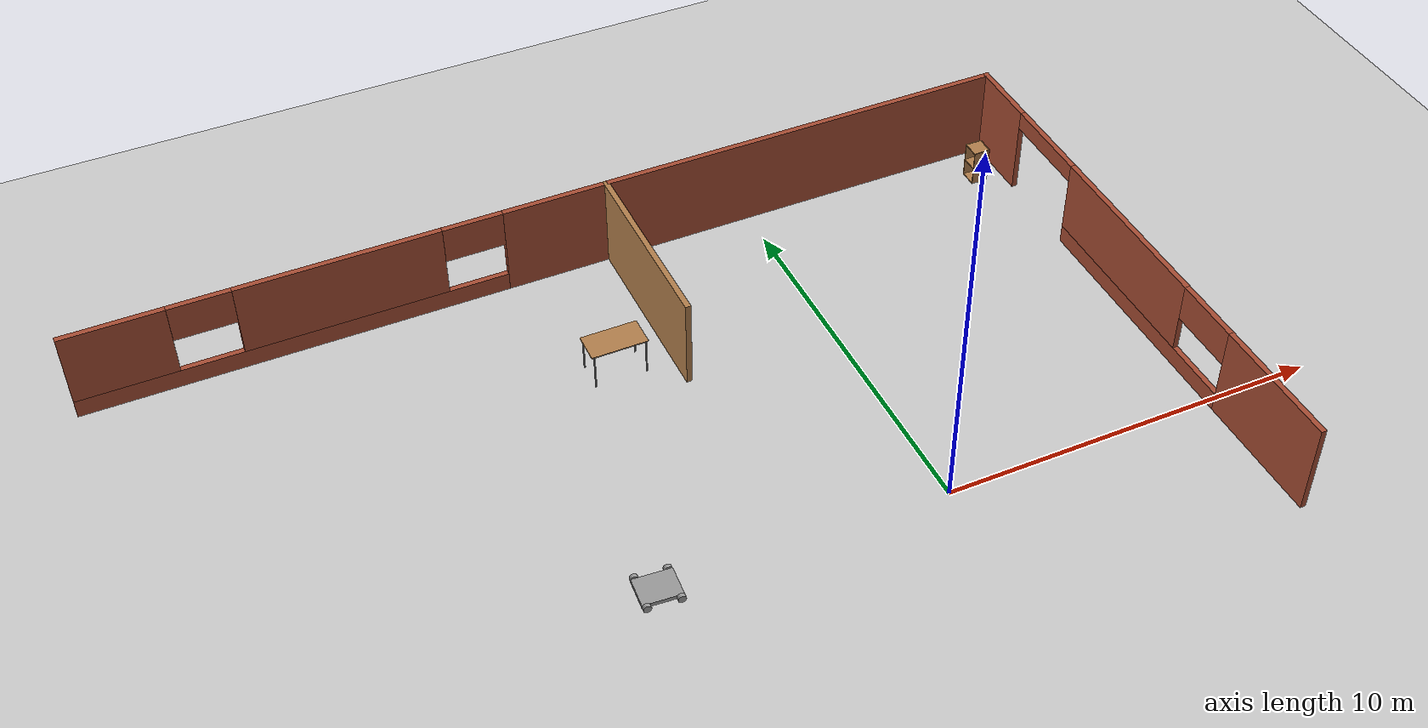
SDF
<sdf version="1.6">
 <world name="default">
  <model name="ground_plane">
   <static>1</static>
   <link name="link">
    <collision name="collision">
     <geometry><plane><normal>0 0 1</normal><size>100 100</size></plane></geometry>
     <surface><friction><ode><mu>100</mu><mu2>50</mu2></ode></friction></surface>
    </collision>
    <visual name="visual">
     <cast_shadows>0</cast_shadows>
     <geometry><plane><normal>0 0 1</normal><size>100 100</size></plane></geometry>
     <material>
      <script><uri>file://media/materials/scripts/gazebo.material</uri><name>Gazebo/Grey</name></script>
     </material>
    </visual>
   </link>
  </model>
  <model name="robotsmall4wheels">
   <link name="link_0">
    <pose>0.008 0 0 0 -0 0</pose>
    <inertial>
     <mass>1</mass>
     <inertia>
      <ixx>0.166667</ixx>
      <ixy>0</ixy>
      <ixz>0</ixz>
      <iyy>0.166667</iyy>
      <iyz>0</iyz>
      <izz>0.166667</izz>
     </inertia>
    </inertial>
    <visual name="visual">
     <geometry><box><size>1 0.8 0.1</size></box></geometry>
     <material>
      <lighting>1</lighting>
      <script><uri>file://media/materials/scripts/gazebo.material</uri><name>Gazebo/Grey</name></script>
      <shader type="pixel"><normal_map>__default__</normal_map></shader>
      <ambient>0.3 0.3 0.3 1</ambient>
      <diffuse>0.7 0.7 0.7 1</diffuse>
      <specular>0.01 0.01 0.01 1</specular>
      <emissive>0 0 0 1</emissive>
     </material>
    </visual>
    <collision name="collision">
     <geometry><box><size>1 0.8 0.1</size></box></geometry>
     <surface>
      <friction>
       <ode><mu>1</mu><mu2>1</mu2><fdir1>0 0 0</fdir1><slip1>0</slip1><slip2>0</slip2></ode>
       <torsional>
        <coefficient>1</coefficient>
        <patch_radius>0</patch_radius>
        <surface_radius>0</surface_radius>
        <use_patch_radius>1</use_patch_radius>
        <ode><slip>0</slip></ode>
       </torsional>
      </friction>
      <bounce><restitution_coefficient>0</restitution_coefficient><threshold>1e+06</threshold></bounce>
      <contact>
       <collide_without_contact>0</collide_without_contact>
       <collide_without_contact_bitmask>1</collide_without_contact_bitmask>
       <collide_bitmask>1</collide_bitmask>
       <ode>
        <soft_cfm>0</soft_cfm>
        <soft_erp>0.2</soft_erp>
        <kp>1e+13</kp>
        <kd>1</kd>
        <max_vel>0.01</max_vel>
        <min_depth>0</min_depth>
       </ode>
       <bullet>
        <split_impulse>1</split_impulse>
        <split_impulse_penetration_threshold>-0.01</split_impulse_penetration_threshold>
        <soft_cfm>0</soft_cfm>
        <soft_erp>0.2</soft_erp>
        <kp>1e+13</kp>
        <kd>1</kd>
       </bullet>
      </contact>
     </surface>
    </collision>
   </link>
   <link name="link_1">
    <pose>0.418031 -0.452375 0 1.5708 -0 0</pose>
    <inertial>
     <mass>1</mass>
     <inertia><ixx>0.145833</ixx><ixy>0</ixy><ixz>0</ixz><iyy>0.145833</iyy><iyz>0</iyz><izz>0.125</izz></inertia>
    </inertial>
    <visual name="visual">
     <geometry><cylinder><radius>0.1</radius><length>0.1</length></cylinder></geometry>
     <material>
      <lighting>1</lighting>
      <script><uri>file://media/materials/scripts/gazebo.material</uri><name>Gazebo/Grey</name></script>
      <shader type="pixel"><normal_map>__default__</normal_map></shader>
      <ambient>0.3 0.3 0.3 1</ambient>
      <diffuse>0.7 0.7 0.7 1</diffuse>
      <specular>0.01 0.01 0.01 1</specular>
      <emissive>0 0 0 1</emissive>
     </material>
    </visual>
    <collision name="collision">
     <geometry><cylinder><radius>0.1</radius><length>0.1</length></cylinder></geometry>
     <surface>
      <friction>
       <ode><mu>1</mu><mu2>1</mu2><fdir1>0 0 0</fdir1><slip1>0</slip1><slip2>0</slip2></ode>
       <torsional>
        <coefficient>1</coefficient>
        <patch_radius>0</patch_radius>
        <surface_radius>0</surface_radius>
        <use_patch_radius>1</use_patch_radius>
        <ode><slip>0</slip></ode>
       </torsional>
      </friction>
      <bounce><restitution_coefficient>0</restitution_coefficient><threshold>1e+06</threshold></bounce>
      <contact>
       <collide_without_contact>0</collide_without_contact>
       <collide_without_contact_bitmask>1</collide_without_contact_bitmask>
       <collide_bitmask>1</collide_bitmask>
       <ode>
        <soft_cfm>0</soft_cfm>
        <soft_erp>0.2</soft_erp>
        <kp>1e+13</kp>
        <kd>1</kd>
        <max_vel>0.01</max_vel>
        <min_depth>0</min_depth>
       </ode>
       <bullet>
        <split_impulse>1</split_impulse>
        <split_impulse_penetration_threshold>-0.01</split_impulse_penetration_threshold>
        <soft_cfm>0</soft_cfm>
        <soft_erp>0.2</soft_erp>
        <kp>1e+13</kp>
        <kd>1</kd>
       </bullet>
      </contact>
     </surface>
    </collision>
   </link>
   <link name="link_1_clone">
    <pose>-0.392 -0.45 -0 1.5708 -0 0</pose>
    <inertial>
     <mass>1</mass>
     <inertia><ixx>0.145833</ixx><ixy>0</ixy><ixz>0</ixz><iyy>0.145833</iyy><iyz>0</iyz><izz>0.125</izz></inertia>
    </inertial>
    <visual name="visual">
     <geometry><cylinder><radius>0.1</radius><length>0.1</length></cylinder></geometry>
     <material>
      <lighting>1</lighting>
      <script><uri>file://media/materials/scripts/gazebo.material</uri><name>Gazebo/Grey</name></script>
      <shader type="pixel"><normal_map>__default__</normal_map></shader>
      <ambient>0.3 0.3 0.3 1</ambient>
      <diffuse>0.7 0.7 0.7 1</diffuse>
      <specular>0.01 0.01 0.01 1</specular>
      <emissive>0 0 0 1</emissive>
     </material>
    </visual>
    <collision name="collision">
     <geometry><cylinder><radius>0.1</radius><length>0.1</length></cylinder></geometry>
     <surface>
      <friction>
       <ode><mu>1</mu><mu2>1</mu2><fdir1>0 0 0</fdir1><slip1>0</slip1><slip2>0</slip2></ode>
       <torsional>
        <coefficient>1</coefficient>
        <patch_radius>0</patch_radius>
        <surface_radius>0</surface_radius>
        <use_patch_radius>1</use_patch_radius>
        <ode><slip>0</slip></ode>
       </torsional>
      </friction>
      <bounce><restitution_coefficient>0</restitution_coefficient><threshold>1e+06</threshold></bounce>
      <contact>
       <collide_without_contact>0</collide_without_contact>
       <collide_without_contact_bitmask>1</collide_without_contact_bitmask>
       <collide_bitmask>1</collide_bitmask>
       <ode>
        <soft_cfm>0</soft_cfm>
        <soft_erp>0.2</soft_erp>
        <kp>1e+13</kp>
        <kd>1</kd>
        <max_vel>0.01</max_vel>
        <min_depth>0</min_depth>
       </ode>
       <bullet>
        <split_impulse>1</split_impulse>
        <split_impulse_penetration_threshold>-0.01</split_impulse_penetration_threshold>
        <soft_cfm>0</soft_cfm>
        <soft_erp>0.2</soft_erp>
        <kp>1e+13</kp>
        <kd>1</kd>
       </bullet>
      </contact>
     </surface>
    </collision>
   </link>
   <link name="link_1_clone_0">
    <pose>-0.392 0.45 -0 1.5708 -0 0</pose>
    <inertial>
     <mass>1</mass>
     <inertia><ixx>0.145833</ixx><ixy>0</ixy><ixz>0</ixz><iyy>0.145833</iyy><iyz>0</iyz><izz>0.125</izz></inertia>
    </inertial>
    <visual name="visual">
     <geometry><cylinder><radius>0.1</radius><length>0.1</length></cylinder></geometry>
     <material>
      <lighting>1</lighting>
      <script><uri>file://media/materials/scripts/gazebo.material</uri><name>Gazebo/Grey</name></script>
      <shader type="pixel"><normal_map>__default__</normal_map></shader>
      <ambient>0.3 0.3 0.3 1</ambient>
      <diffuse>0.7 0.7 0.7 1</diffuse>
      <specular>0.01 0.01 0.01 1</specular>
      <emissive>0 0 0 1</emissive>
     </material>
    </visual>
    <collision name="collision">
     <geometry><cylinder><radius>0.1</radius><length>0.1</length></cylinder></geometry>
     <surface>
      <friction>
       <ode><mu>1</mu><mu2>1</mu2><fdir1>0 0 0</fdir1><slip1>0</slip1><slip2>0</slip2></ode>
       <torsional>
        <coefficient>1</coefficient>
        <patch_radius>0</patch_radius>
        <surface_radius>0</surface_radius>
        <use_patch_radius>1</use_patch_radius>
        <ode><slip>0</slip></ode>
       </torsional>
      </friction>
      <bounce><restitution_coefficient>0</restitution_coefficient><threshold>1e+06</threshold></bounce>
      <contact>
       <collide_without_contact>0</collide_without_contact>
       <collide_without_contact_bitmask>1</collide_without_contact_bitmask>
       <collide_bitmask>1</collide_bitmask>
       <ode>
        <soft_cfm>0</soft_cfm>
        <soft_erp>0.2</soft_erp>
        <kp>1e+13</kp>
        <kd>1</kd>
        <max_vel>0.01</max_vel>
        <min_depth>0</min_depth>
       </ode>
       <bullet>
        <split_impulse>1</split_impulse>
        <split_impulse_penetration_threshold>-0.01</split_impulse_penetration_threshold>
        <soft_cfm>0</soft_cfm>
        <soft_erp>0.2</soft_erp>
        <kp>1e+13</kp>
        <kd>1</kd>
       </bullet>
      </contact>
     </surface>
    </collision>
   </link>
   <link name="link_1_clone_1">
    <pose>0.408 0.45 -0 1.5708 -0 0</pose>
    <inertial>
     <mass>1</mass>
     <inertia><ixx>0.145833</ixx><ixy>0</ixy><ixz>0</ixz><iyy>0.145833</iyy><iyz>0</iyz><izz>0.125</izz></inertia>
    </inertial>
    <visual name="visual">
     <geometry><cylinder><radius>0.1</radius><length>0.1</length></cylinder></geometry>
     <material>
      <lighting>1</lighting>
      <script><uri>file://media/materials/scripts/gazebo.material</uri><name>Gazebo/Grey</name></script>
      <shader type="pixel"><normal_map>__default__</normal_map></shader>
      <ambient>0.3 0.3 0.3 1</ambient>
      <diffuse>0.7 0.7 0.7 1</diffuse>
      <specular>0.01 0.01 0.01 1</specular>
      <emissive>0 0 0 1</emissive>
     </material>
    </visual>
    <collision name="collision">
     <geometry><cylinder><radius>0.1</radius><length>0.1</length></cylinder></geometry>
     <surface>
      <friction>
       <ode><mu>1</mu><mu2>1</mu2><fdir1>0 0 0</fdir1><slip1>0</slip1><slip2>0</slip2></ode>
       <torsional>
        <coefficient>1</coefficient>
        <patch_radius>0</patch_radius>
        <surface_radius>0</surface_radius>
        <use_patch_radius>1</use_patch_radius>
        <ode><slip>0</slip></ode>
       </torsional>
      </friction>
      <bounce><restitution_coefficient>0</restitution_coefficient><threshold>1e+06</threshold></bounce>
      <contact>
       <collide_without_contact>0</collide_without_contact>
       <collide_without_contact_bitmask>1</collide_without_contact_bitmask>
       <collide_bitmask>1</collide_bitmask>
       <ode>
        <soft_cfm>0</soft_cfm>
        <soft_erp>0.2</soft_erp>
        <kp>1e+13</kp>
        <kd>1</kd>
        <max_vel>0.01</max_vel>
        <min_depth>0</min_depth>
       </ode>
       <bullet>
        <split_impulse>1</split_impulse>
        <split_impulse_penetration_threshold>-0.01</split_impulse_penetration_threshold>
        <soft_cfm>0</soft_cfm>
        <soft_erp>0.2</soft_erp>
        <kp>1e+13</kp>
        <kd>1</kd>
       </bullet>
      </contact>
     </surface>
    </collision>
   </link>
   <joint name="link_0_JOINT_0" type="revolute">
    <parent>link_0</parent>
    <child>link_1</child>
    <axis>
     <xyz>0 0 1</xyz>
     <use_parent_model_frame>0</use_parent_model_frame>
     <limit>
      <lower>-1.79769e+308</lower>
      <upper>1.79769e+308</upper>
      <effort>-1</effort>
      <velocity>-1</velocity>
     </limit>
     <dynamics>
      <spring_reference>0</spring_reference>
      <spring_stiffness>0</spring_stiffness>
      <damping>0</damping>
     </dynamics>
    </axis>
    <physics>
     <ode><limit><cfm>0</cfm><erp>0.2</erp></limit><suspension><cfm>0</cfm><erp>0.2</erp></suspension></ode>
    </physics>
   </joint>
   <joint name="link_0_JOINT_3" type="revolute">
    <parent>link_0</parent>
    <child>link_1_clone</child>
    <axis>
     <xyz>0 0 1</xyz>
     <use_parent_model_frame>0</use_parent_model_frame>
     <limit>
      <lower>-1.79769e+308</lower>
      <upper>1.79769e+308</upper>
      <effort>-1</effort>
      <velocity>-1</velocity>
     </limit>
     <dynamics>
      <spring_reference>0</spring_reference>
      <spring_stiffness>0</spring_stiffness>
      <damping>0</damping>
      <friction>0</friction>
     </dynamics>
    </axis>
    <physics>
     <ode><limit><cfm>0</cfm><erp>0.2</erp></limit><suspension><cfm>0</cfm><erp>0.2</erp></suspension></ode>
    </physics>
   </joint>
   <joint name="link_0_JOINT_5" type="revolute">
    <parent>link_0</parent>
    <child>link_1_clone_0</child>
    <axis>
     <xyz>0 0 1</xyz>
     <use_parent_model_frame>0</use_parent_model_frame>
     <limit>
      <lower>-1.79769e+308</lower>
      <upper>1.79769e+308</upper>
      <effort>-1</effort>
      <velocity>-1</velocity>
     </limit>
     <dynamics>
      <spring_reference>0</spring_reference>
      <spring_stiffness>0</spring_stiffness>
      <damping>0</damping>
      <friction>0</friction>
     </dynamics>
    </axis>
    <physics>
     <ode><limit><cfm>0</cfm><erp>0.2</erp></limit><suspension><cfm>0</cfm><erp>0.2</erp></suspension></ode>
    </physics>
   </joint>
   <joint name="link_0_JOINT_6" type="revolute">
    <parent>link_0</parent>
    <child>link_1_clone_1</child>
    <axis>
     <xyz>0 0 1</xyz>
     <use_parent_model_frame>0</use_parent_model_frame>
     <limit>
      <lower>-1.79769e+308</lower>
      <upper>1.79769e+308</upper>
      <effort>-1</effort>
      <velocity>-1</velocity>
     </limit>
     <dynamics>
      <spring_reference>0</spring_reference>
      <spring_stiffness>0</spring_stiffness>
      <damping>0</damping>
      <friction>0</friction>
     </dynamics>
    </axis>
    <physics>
     <ode><limit><cfm>0</cfm><erp>0.2</erp></limit><suspension><cfm>0</cfm><erp>0.2</erp></suspension></ode>
    </physics>
   </joint>
   <static>0</static>
   <pose>-7.33775 0.15009 0.1 0 0 -0.071702</pose>
  </model>
  <model name="table_1">
   <static>1</static>
   <link name="link">
    <collision name="surface">
     <pose>0 0 1 0 -0 0</pose>
     <geometry><box><size>1.5 0.8 0.03</size></box></geometry>
     <surface><friction><ode><mu>0.6</mu><mu2>0.6</mu2></ode></friction></surface>
    </collision>
    <visual name="visual1">
     <pose>0 0 1 0 -0 0</pose>
     <geometry><box><size>1.5 0.8 0.03</size></box></geometry>
     <material>
      <script><uri>file://media/materials/scripts/gazebo.material</uri><name>Gazebo/Wood</name></script>
     </material>
    </visual>
    <collision name="front_left_leg">
     <pose>0.68 0.38 0.5 0 -0 0</pose>
     <geometry><cylinder><radius>0.02</radius><length>1</length></cylinder></geometry>
    </collision>
    <visual name="front_left_leg">
     <pose>0.68 0.38 0.5 0 -0 0</pose>
     <geometry><cylinder><radius>0.02</radius><length>1</length></cylinder></geometry>
     <material>
      <script><uri>file://media/materials/scripts/gazebo.material</uri><name>Gazebo/Grey</name></script>
     </material>
    </visual>
    <collision name="front_right_leg">
     <pose>0.68 -0.38 0.5 0 -0 0</pose>
     <geometry><cylinder><radius>0.02</radius><length>1</length></cylinder></geometry>
    </collision>
    <visual name="front_right_leg">
     <pose>0.68 -0.38 0.5 0 -0 0</pose>
     <geometry><cylinder><radius>0.02</radius><length>1</length></cylinder></geometry>
     <material>
      <script><uri>file://media/materials/scripts/gazebo.material</uri><name>Gazebo/Grey</name></script>
     </material>
    </visual>
    <collision name="back_right_leg">
     <pose>-0.68 -0.38 0.5 0 -0 0</pose>
     <geometry><cylinder><radius>0.02</radius><length>1</length></cylinder></geometry>
    </collision>
    <visual name="back_right_leg">
     <pose>-0.68 -0.38 0.5 0 -0 0</pose>
     <geometry><cylinder><radius>0.02</radius><length>1</length></cylinder></geometry>
     <material>
      <script><uri>file://media/materials/scripts/gazebo.material</uri><name>Gazebo/Grey</name></script>
     </material>
    </visual>
    <collision name="back_left_leg">
     <pose>-0.68 0.38 0.5 0 -0 0</pose>
     <geometry><cylinder><radius>0.02</radius><length>1</length></cylinder></geometry>
    </collision>
    <visual name="back_left_leg">
     <pose>-0.68 0.38 0.5 0 -0 0</pose>
     <geometry><cylinder><radius>0.02</radius><length>1</length></cylinder></geometry>
     <material>
      <script><uri>file://media/materials/scripts/gazebo.material</uri><name>Gazebo/Grey</name></script>
     </material>
    </visual>
   </link>
   <pose>-5.47743 7.09258 0 0 -0 0</pose>
  </model>
  <model name="cabinet_1">
   <static>1</static>
   <link name="cabinet_bottom_plate">
    <inertial>
     <pose>0 0 -1 0 -0 0</pose>
     <inertia><ixx>2.05</ixx><ixy>0</ixy><ixz>0</ixz><iyy>2.05</iyy><iyz>0</iyz><izz>2.05</izz></inertia>
     <mass>25</mass>
    </inertial>
    <collision name="cabinet_bottom_plate_geom">
     <pose>0 0 0.01 0 -0 0</pose>
     <geometry><box><size>0.45 0.45 0.02</size></box></geometry>
    </collision>
    <visual name="cabinet_bottom_plate_geom_visual">
     <pose>0 0 0.01 0 -0 0</pose>
     <geometry><box><size>0.45 0.45 0.02</size></box></geometry>
     <material>
      <script><uri>file://media/materials/scripts/gazebo.material</uri><name>Gazebo/Wood</name></script>
     </material>
    </visual>
    <collision name="cabinet_bottom_plate_geom_cabinet_back_plate">
     <pose>0.235 0 0.51 0 -0 0</pose>
     <geometry><box><size>0.02 0.45 1.02</size></box></geometry>
    </collision>
    <visual name="cabinet_bottom_plate_geom_cabinet_back_plate_visual">
     <pose>0.235 0 0.51 0 -0 0</pose>
     <geometry><box><size>0.02 0.45 1.02</size></box></geometry>
     <material>
      <script><uri>file://media/materials/scripts/gazebo.material</uri><name>Gazebo/Wood</name></script>
     </material>
    </visual>
    <collision name="cabinet_bottom_plate_geom_cabinet_left_plate">
     <pose>0 0.235 0.51 0 -0 0</pose>
     <geometry><box><size>0.45 0.02 1.02</size></box></geometry>
    </collision>
    <visual name="cabinet_bottom_plate_geom_cabinet_left_plate_visual">
     <pose>0 0.235 0.51 0 -0 0</pose>
     <geometry><box><size>0.45 0.02 1.02</size></box></geometry>
     <material>
      <script><uri>file://media/materials/scripts/gazebo.material</uri><name>Gazebo/Wood</name></script>
     </material>
    </visual>
    <collision name="cabinet_bottom_plate_geom_cabinet_middle_plate">
     <pose>0 0 0.51 0 -0 0</pose>
     <geometry><box><size>0.45 0.45 0.02</size></box></geometry>
    </collision>
    <visual name="cabinet_bottom_plate_geom_cabinet_middle_plate_visual">
     <pose>0 0 0.51 0 -0 0</pose>
     <geometry><box><size>0.45 0.45 0.02</size></box></geometry>
     <material>
      <script><uri>file://media/materials/scripts/gazebo.material</uri><name>Gazebo/Wood</name></script>
     </material>
    </visual>
    <collision name="cabinet_bottom_plate_geom_cabinet_right_plate">
     <pose>0 -0.235 0.51 0 -0 0</pose>
     <geometry><box><size>0.45 0.02 1.02</size></box></geometry>
    </collision>
    <visual name="cabinet_bottom_plate_geom_cabinet_right_plate_visual">
     <pose>0 -0.235 0.51 0 -0 0</pose>
     <geometry><box><size>0.45 0.02 1.02</size></box></geometry>
     <material>
      <script><uri>file://media/materials/scripts/gazebo.material</uri><name>Gazebo/Wood</name></script>
     </material>
    </visual>
    <collision name="cabinet_bottom_plate_geom_cabinet_top_plate">
     <pose>0 0 1.01 0 -0 0</pose>
     <geometry><box><size>0.45 0.45 0.02</size></box></geometry>
    </collision>
    <visual name="cabinet_bottom_plate_geom_cabinet_top_plate_visual">
     <pose>0 0 1.01 0 -0 0</pose>
     <geometry><box><size>0.45 0.45 0.02</size></box></geometry>
     <material>
      <script><uri>file://media/materials/scripts/gazebo.material</uri><name>Gazebo/Wood</name></script>
     </material>
    </visual>
   </link>
   <pose>6.44478 9.99522 0 0 -0 0</pose>
  </model>
  <model name="myhouse">
   <link name="Wall_3">
    <pose>12.55 -0.012047 0 0 -0 1.5708</pose>
    <visual name="Wall_3_Visual_0">
     <pose>-5.73076 0 1.25 0 -0 0</pose>
     <geometry><box><size>3.53847 0.15 2.5</size></box></geometry>
     <material>
      <script><uri>file://media/materials/scripts/gazebo.material</uri><name>Gazebo/Bricks</name></script>
      <ambient>1 1 1 1</ambient>
      <shader type="pixel"/>
      <diffuse>1 1 1 1</diffuse>
      <specular>0.2 0.2 0.2 1</specular>
      <emissive>0 0 0 1</emissive>
     </material>
     <meta><layer>0</layer></meta>
    </visual>
    <visual name="Wall_3_Visual_1">
     <pose>6.50526 0 1.25 0 -0 0</pose>
     <geometry><box><size>1.98949 0.15 2.5</size></box></geometry>
     <material>
      <script><uri>file://media/materials/scripts/gazebo.material</uri><name>Gazebo/Bricks</name></script>
      <ambient>1 1 1 1</ambient>
      <shader type="pixel"/>
      <diffuse>1 1 1 1</diffuse>
      <specular>0.2 0.2 0.2 1</specular>
      <emissive>0 0 0 1</emissive>
     </material>
     <meta><layer>0</layer></meta>
    </visual>
    <visual name="Wall_3_Visual_2">
     <pose>-0.475509 0 0.25 0 -0 0</pose>
     <geometry><box><size>6.97204 0.15 0.5</size></box></geometry>
     <material>
      <script><uri>file://media/materials/scripts/gazebo.material</uri><name>Gazebo/Bricks</name></script>
      <ambient>1 1 1 1</ambient>
      <shader type="pixel"/>
      <diffuse>1 1 1 1</diffuse>
      <specular>0.2 0.2 0.2 1</specular>
      <emissive>0 0 0 1</emissive>
     </material>
     <meta><layer>0</layer></meta>
    </visual>
    <visual name="Wall_3_Visual_3">
     <pose>0.424491 0 1.5 0 -0 0</pose>
     <geometry><box><size>5.17204 0.15 2</size></box></geometry>
     <material>
      <script><uri>file://media/materials/scripts/gazebo.material</uri><name>Gazebo/Bricks</name></script>
      <ambient>1 1 1 1</ambient>
      <shader type="pixel"/>
      <diffuse>1 1 1 1</diffuse>
      <specular>0.2 0.2 0.2 1</specular>
      <emissive>0 0 0 1</emissive>
     </material>
     <meta><layer>0</layer></meta>
    </visual>
    <visual name="Wall_3_Visual_4">
     <pose>-3.06153 0 2 0 -0 0</pose>
     <geometry><box><size>1.8 0.15 1</size></box></geometry>
     <material>
      <script><uri>file://media/materials/scripts/gazebo.material</uri><name>Gazebo/Bricks</name></script>
      <ambient>1 1 1 1</ambient>
      <shader type="pixel"/>
      <diffuse>1 1 1 1</diffuse>
      <specular>0.2 0.2 0.2 1</specular>
      <emissive>0 0 0 1</emissive>
     </material>
     <meta><layer>0</layer></meta>
    </visual>
    <visual name="Wall_3_Visual_5">
     <pose>4.26051 0 2.25 0 -0 0</pose>
     <geometry><box><size>2.5 0.15 0.5</size></box></geometry>
     <material>
      <script><uri>file://media/materials/scripts/gazebo.material</uri><name>Gazebo/Bricks</name></script>
      <ambient>1 1 1 1</ambient>
      <shader type="pixel"/>
      <diffuse>1 1 1 1</diffuse>
      <specular>0.2 0.2 0.2 1</specular>
      <emissive>0 0 0 1</emissive>
     </material>
     <meta><layer>0</layer></meta>
    </visual>
    <collision name="Wall_3_Collision_0">
     <pose>-5.73076 0 1.25 0 -0 0</pose>
     <geometry><box><size>3.53847 0.15 2.5</size></box></geometry>
     <surface>
      <friction>
       <ode><mu>1</mu><mu2>1</mu2><fdir1>0 0 0</fdir1><slip1>0</slip1><slip2>0</slip2></ode>
       <torsional>
        <coefficient>1</coefficient>
        <patch_radius>0</patch_radius>
        <surface_radius>0</surface_radius>
        <use_patch_radius>1</use_patch_radius>
        <ode><slip>0</slip></ode>
       </torsional>
      </friction>
      <bounce><restitution_coefficient>0</restitution_coefficient><threshold>1e+06</threshold></bounce>
      <contact>
       <collide_without_contact>0</collide_without_contact>
       <collide_without_contact_bitmask>1</collide_without_contact_bitmask>
       <collide_bitmask>1</collide_bitmask>
       <ode>
        <soft_cfm>0</soft_cfm>
        <soft_erp>0.2</soft_erp>
        <kp>1e+13</kp>
        <kd>1</kd>
        <max_vel>0.01</max_vel>
        <min_depth>0</min_depth>
       </ode>
       <bullet>
        <split_impulse>1</split_impulse>
        <split_impulse_penetration_threshold>-0.01</split_impulse_penetration_threshold>
        <soft_cfm>0</soft_cfm>
        <soft_erp>0.2</soft_erp>
        <kp>1e+13</kp>
        <kd>1</kd>
       </bullet>
      </contact>
     </surface>
    </collision>
    <collision name="Wall_3_Collision_1">
     <pose>6.50526 0 1.25 0 -0 0</pose>
     <geometry><box><size>1.98949 0.15 2.5</size></box></geometry>
     <surface>
      <friction>
       <ode><mu>1</mu><mu2>1</mu2><fdir1>0 0 0</fdir1><slip1>0</slip1><slip2>0</slip2></ode>
       <torsional>
        <coefficient>1</coefficient>
        <patch_radius>0</patch_radius>
        <surface_radius>0</surface_radius>
        <use_patch_radius>1</use_patch_radius>
        <ode><slip>0</slip></ode>
       </torsional>
      </friction>
      <bounce><restitution_coefficient>0</restitution_coefficient><threshold>1e+06</threshold></bounce>
      <contact>
       <collide_without_contact>0</collide_without_contact>
       <collide_without_contact_bitmask>1</collide_without_contact_bitmask>
       <collide_bitmask>1</collide_bitmask>
       <ode>
        <soft_cfm>0</soft_cfm>
        <soft_erp>0.2</soft_erp>
        <kp>1e+13</kp>
        <kd>1</kd>
        <max_vel>0.01</max_vel>
        <min_depth>0</min_depth>
       </ode>
       <bullet>
        <split_impulse>1</split_impulse>
        <split_impulse_penetration_threshold>-0.01</split_impulse_penetration_threshold>
        <soft_cfm>0</soft_cfm>
        <soft_erp>0.2</soft_erp>
        <kp>1e+13</kp>
        <kd>1</kd>
       </bullet>
      </contact>
     </surface>
    </collision>
    <collision name="Wall_3_Collision_2">
     <pose>-0.475509 0 0.25 0 -0 0</pose>
     <geometry><box><size>6.97204 0.15 0.5</size></box></geometry>
     <surface>
      <friction>
       <ode><mu>1</mu><mu2>1</mu2><fdir1>0 0 0</fdir1><slip1>0</slip1><slip2>0</slip2></ode>
       <torsional>
        <coefficient>1</coefficient>
        <patch_radius>0</patch_radius>
        <surface_radius>0</surface_radius>
        <use_patch_radius>1</use_patch_radius>
        <ode><slip>0</slip></ode>
       </torsional>
      </friction>
      <bounce><restitution_coefficient>0</restitution_coefficient><threshold>1e+06</threshold></bounce>
      <contact>
       <collide_without_contact>0</collide_without_contact>
       <collide_without_contact_bitmask>1</collide_without_contact_bitmask>
       <collide_bitmask>1</collide_bitmask>
       <ode>
        <soft_cfm>0</soft_cfm>
        <soft_erp>0.2</soft_erp>
        <kp>1e+13</kp>
        <kd>1</kd>
        <max_vel>0.01</max_vel>
        <min_depth>0</min_depth>
       </ode>
       <bullet>
        <split_impulse>1</split_impulse>
        <split_impulse_penetration_threshold>-0.01</split_impulse_penetration_threshold>
        <soft_cfm>0</soft_cfm>
        <soft_erp>0.2</soft_erp>
        <kp>1e+13</kp>
        <kd>1</kd>
       </bullet>
      </contact>
     </surface>
    </collision>
    <collision name="Wall_3_Collision_3">
     <pose>0.424491 0 1.5 0 -0 0</pose>
     <geometry><box><size>5.17204 0.15 2</size></box></geometry>
     <surface>
      <friction>
       <ode><mu>1</mu><mu2>1</mu2><fdir1>0 0 0</fdir1><slip1>0</slip1><slip2>0</slip2></ode>
       <torsional>
        <coefficient>1</coefficient>
        <patch_radius>0</patch_radius>
        <surface_radius>0</surface_radius>
        <use_patch_radius>1</use_patch_radius>
        <ode><slip>0</slip></ode>
       </torsional>
      </friction>
      <bounce><restitution_coefficient>0</restitution_coefficient><threshold>1e+06</threshold></bounce>
      <contact>
       <collide_without_contact>0</collide_without_contact>
       <collide_without_contact_bitmask>1</collide_without_contact_bitmask>
       <collide_bitmask>1</collide_bitmask>
       <ode>
        <soft_cfm>0</soft_cfm>
        <soft_erp>0.2</soft_erp>
        <kp>1e+13</kp>
        <kd>1</kd>
        <max_vel>0.01</max_vel>
        <min_depth>0</min_depth>
       </ode>
       <bullet>
        <split_impulse>1</split_impulse>
        <split_impulse_penetration_threshold>-0.01</split_impulse_penetration_threshold>
        <soft_cfm>0</soft_cfm>
        <soft_erp>0.2</soft_erp>
        <kp>1e+13</kp>
        <kd>1</kd>
       </bullet>
      </contact>
     </surface>
    </collision>
    <collision name="Wall_3_Collision_5">
     <pose>4.26051 0 2.25 0 -0 0</pose>
     <geometry><box><size>2.5 0.15 0.5</size></box></geometry>
     <surface>
      <friction>
       <ode><mu>1</mu><mu2>1</mu2><fdir1>0 0 0</fdir1><slip1>0</slip1><slip2>0</slip2></ode>
       <torsional>
        <coefficient>1</coefficient>
        <patch_radius>0</patch_radius>
        <surface_radius>0</surface_radius>
        <use_patch_radius>1</use_patch_radius>
        <ode><slip>0</slip></ode>
       </torsional>
      </friction>
      <bounce><restitution_coefficient>0</restitution_coefficient><threshold>1e+06</threshold></bounce>
      <contact>
       <collide_without_contact>0</collide_without_contact>
       <collide_without_contact_bitmask>1</collide_without_contact_bitmask>
       <collide_bitmask>1</collide_bitmask>
       <ode>
        <soft_cfm>0</soft_cfm>
        <soft_erp>0.2</soft_erp>
        <kp>1e+13</kp>
        <kd>1</kd>
        <max_vel>0.01</max_vel>
        <min_depth>0</min_depth>
       </ode>
       <bullet>
        <split_impulse>1</split_impulse>
        <split_impulse_penetration_threshold>-0.01</split_impulse_penetration_threshold>
        <soft_cfm>0</soft_cfm>
        <soft_erp>0.2</soft_erp>
        <kp>1e+13</kp>
        <kd>1</kd>
       </bullet>
      </contact>
     </surface>
    </collision>
    <collision name="Wall_3_Collision_4">
     <pose>-3.06153 0 2 0 -0 0</pose>
     <geometry><box><size>1.8 0.15 1</size></box></geometry>
     <surface>
      <friction>
       <ode><mu>1</mu><mu2>1</mu2><fdir1>0 0 0</fdir1><slip1>0</slip1><slip2>0</slip2></ode>
       <torsional>
        <coefficient>1</coefficient>
        <patch_radius>0</patch_radius>
        <surface_radius>0</surface_radius>
        <use_patch_radius>1</use_patch_radius>
        <ode><slip>0</slip></ode>
       </torsional>
      </friction>
      <bounce><restitution_coefficient>0</restitution_coefficient><threshold>1e+06</threshold></bounce>
      <contact>
       <collide_without_contact>0</collide_without_contact>
       <collide_without_contact_bitmask>1</collide_without_contact_bitmask>
       <collide_bitmask>1</collide_bitmask>
       <ode>
        <soft_cfm>0</soft_cfm>
        <soft_erp>0.2</soft_erp>
        <kp>1e+13</kp>
        <kd>1</kd>
        <max_vel>0.01</max_vel>
        <min_depth>0</min_depth>
       </ode>
       <bullet>
        <split_impulse>1</split_impulse>
        <split_impulse_penetration_threshold>-0.01</split_impulse_penetration_threshold>
        <soft_cfm>0</soft_cfm>
        <soft_erp>0.2</soft_erp>
        <kp>1e+13</kp>
        <kd>1</kd>
       </bullet>
      </contact>
     </surface>
    </collision>
   </link>
   <link name="Wall_4">
    <pose>0 7.41295 0 0 -0 3.14159</pose>
    <visual name="Wall_4_Visual_0">
     <pose>-5.56469 0 1.25 0 -0 0</pose>
     <geometry><box><size>14.1206 0.15 2.5</size></box></geometry>
     <material>
      <script><uri>file://media/materials/scripts/gazebo.material</uri><name>Gazebo/Bricks</name></script>
      <ambient>1 1 1 1</ambient>
      <shader type="pixel"/>
      <diffuse>1 1 1 1</diffuse>
      <specular>0.2 0.2 0.2 1</specular>
      <emissive>0 0 0 1</emissive>
     </material>
     <meta><layer>0</layer></meta>
    </visual>
    <visual name="Wall_4_Visual_1">
     <pose>7.06031 0 0.25 0 -0 0</pose>
     <geometry><box><size>11.1294 0.15 0.5</size></box></geometry>
     <material>
      <script><uri>file://media/materials/scripts/gazebo.material</uri><name>Gazebo/Bricks</name></script>
      <ambient>1 1 1 1</ambient>
      <shader type="pixel"/>
      <diffuse>1 1 1 1</diffuse>
      <specular>0.2 0.2 0.2 1</specular>
      <emissive>0 0 0 1</emissive>
     </material>
     <meta><layer>0</layer></meta>
    </visual>
    <visual name="Wall_4_Visual_2">
     <pose>5.75457 0 1.5 0 -0 0</pose>
     <geometry><box><size>5.3179 0.15 2</size></box></geometry>
     <material>
      <script><uri>file://media/materials/scripts/gazebo.material</uri><name>Gazebo/Bricks</name></script>
      <ambient>1 1 1 1</ambient>
      <shader type="pixel"/>
      <diffuse>1 1 1 1</diffuse>
      <specular>0.2 0.2 0.2 1</specular>
      <emissive>0 0 0 1</emissive>
     </material>
     <meta><layer>0</layer></meta>
    </visual>
    <visual name="Wall_4_Visual_3">
     <pose>11.3193 0 1.5 0 -0 0</pose>
     <geometry><box><size>2.61148 0.15 2</size></box></geometry>
     <material>
      <script><uri>file://media/materials/scripts/gazebo.material</uri><name>Gazebo/Bricks</name></script>
      <ambient>1 1 1 1</ambient>
      <shader type="pixel"/>
      <diffuse>1 1 1 1</diffuse>
      <specular>0.2 0.2 0.2 1</specular>
      <emissive>0 0 0 1</emissive>
     </material>
     <meta><layer>0</layer></meta>
    </visual>
    <visual name="Wall_4_Visual_4">
     <pose>2.29561 0 2 0 -0 0</pose>
     <geometry><box><size>1.6 0.15 1</size></box></geometry>
     <material>
      <script><uri>file://media/materials/scripts/gazebo.material</uri><name>Gazebo/Bricks</name></script>
      <ambient>1 1 1 1</ambient>
      <shader type="pixel"/>
      <diffuse>1 1 1 1</diffuse>
      <specular>0.2 0.2 0.2 1</specular>
      <emissive>0 0 0 1</emissive>
     </material>
     <meta><layer>0</layer></meta>
    </visual>
    <visual name="Wall_4_Visual_5">
     <pose>9.21352 0 2 0 -0 0</pose>
     <geometry><box><size>1.6 0.15 1</size></box></geometry>
     <material>
      <script><uri>file://media/materials/scripts/gazebo.material</uri><name>Gazebo/Bricks</name></script>
      <ambient>1 1 1 1</ambient>
      <shader type="pixel"/>
      <diffuse>1 1 1 1</diffuse>
      <specular>0.2 0.2 0.2 1</specular>
      <emissive>0 0 0 1</emissive>
     </material>
     <meta><layer>0</layer></meta>
    </visual>
    <collision name="Wall_4_Collision_0">
     <pose>-5.56469 0 1.25 0 -0 0</pose>
     <geometry><box><size>14.1206 0.15 2.5</size></box></geometry>
     <surface>
      <friction>
       <ode><mu>1</mu><mu2>1</mu2><fdir1>0 0 0</fdir1><slip1>0</slip1><slip2>0</slip2></ode>
       <torsional>
        <coefficient>1</coefficient>
        <patch_radius>0</patch_radius>
        <surface_radius>0</surface_radius>
        <use_patch_radius>1</use_patch_radius>
        <ode><slip>0</slip></ode>
       </torsional>
      </friction>
      <bounce><restitution_coefficient>0</restitution_coefficient><threshold>1e+06</threshold></bounce>
      <contact>
       <collide_without_contact>0</collide_without_contact>
       <collide_without_contact_bitmask>1</collide_without_contact_bitmask>
       <collide_bitmask>1</collide_bitmask>
       <ode>
        <soft_cfm>0</soft_cfm>
        <soft_erp>0.2</soft_erp>
        <kp>1e+13</kp>
        <kd>1</kd>
        <max_vel>0.01</max_vel>
        <min_depth>0</min_depth>
       </ode>
       <bullet>
        <split_impulse>1</split_impulse>
        <split_impulse_penetration_threshold>-0.01</split_impulse_penetration_threshold>
        <soft_cfm>0</soft_cfm>
        <soft_erp>0.2</soft_erp>
        <kp>1e+13</kp>
        <kd>1</kd>
       </bullet>
      </contact>
     </surface>
    </collision>
    <collision name="Wall_4_Collision_1">
     <pose>7.06031 0 0.25 0 -0 0</pose>
     <geometry><box><size>11.1294 0.15 0.5</size></box></geometry>
     <surface>
      <friction>
       <ode><mu>1</mu><mu2>1</mu2><fdir1>0 0 0</fdir1><slip1>0</slip1><slip2>0</slip2></ode>
       <torsional>
        <coefficient>1</coefficient>
        <patch_radius>0</patch_radius>
        <surface_radius>0</surface_radius>
        <use_patch_radius>1</use_patch_radius>
        <ode><slip>0</slip></ode>
       </torsional>
      </friction>
      <bounce><restitution_coefficient>0</restitution_coefficient><threshold>1e+06</threshold></bounce>
      <contact>
       <collide_without_contact>0</collide_without_contact>
       <collide_without_contact_bitmask>1</collide_without_contact_bitmask>
       <collide_bitmask>1</collide_bitmask>
       <ode>
        <soft_cfm>0</soft_cfm>
        <soft_erp>0.2</soft_erp>
        <kp>1e+13</kp>
        <kd>1</kd>
        <max_vel>0.01</max_vel>
        <min_depth>0</min_depth>
       </ode>
       <bullet>
        <split_impulse>1</split_impulse>
        <split_impulse_penetration_threshold>-0.01</split_impulse_penetration_threshold>
        <soft_cfm>0</soft_cfm>
        <soft_erp>0.2</soft_erp>
        <kp>1e+13</kp>
        <kd>1</kd>
       </bullet>
      </contact>
     </surface>
    </collision>
    <collision name="Wall_4_Collision_2">
     <pose>5.75457 0 1.5 0 -0 0</pose>
     <geometry><box><size>5.3179 0.15 2</size></box></geometry>
     <surface>
      <friction>
       <ode><mu>1</mu><mu2>1</mu2><fdir1>0 0 0</fdir1><slip1>0</slip1><slip2>0</slip2></ode>
       <torsional>
        <coefficient>1</coefficient>
        <patch_radius>0</patch_radius>
        <surface_radius>0</surface_radius>
        <use_patch_radius>1</use_patch_radius>
        <ode><slip>0</slip></ode>
       </torsional>
      </friction>
      <bounce><restitution_coefficient>0</restitution_coefficient><threshold>1e+06</threshold></bounce>
      <contact>
       <collide_without_contact>0</collide_without_contact>
       <collide_without_contact_bitmask>1</collide_without_contact_bitmask>
       <collide_bitmask>1</collide_bitmask>
       <ode>
        <soft_cfm>0</soft_cfm>
        <soft_erp>0.2</soft_erp>
        <kp>1e+13</kp>
        <kd>1</kd>
        <max_vel>0.01</max_vel>
        <min_depth>0</min_depth>
       </ode>
       <bullet>
        <split_impulse>1</split_impulse>
        <split_impulse_penetration_threshold>-0.01</split_impulse_penetration_threshold>
        <soft_cfm>0</soft_cfm>
        <soft_erp>0.2</soft_erp>
        <kp>1e+13</kp>
        <kd>1</kd>
       </bullet>
      </contact>
     </surface>
    </collision>
    <collision name="Wall_4_Collision_3">
     <pose>11.3193 0 1.5 0 -0 0</pose>
     <geometry><box><size>2.61148 0.15 2</size></box></geometry>
     <surface>
      <friction>
       <ode><mu>1</mu><mu2>1</mu2><fdir1>0 0 0</fdir1><slip1>0</slip1><slip2>0</slip2></ode>
       <torsional>
        <coefficient>1</coefficient>
        <patch_radius>0</patch_radius>
        <surface_radius>0</surface_radius>
        <use_patch_radius>1</use_patch_radius>
        <ode><slip>0</slip></ode>
       </torsional>
      </friction>
      <bounce><restitution_coefficient>0</restitution_coefficient><threshold>1e+06</threshold></bounce>
      <contact>
       <collide_without_contact>0</collide_without_contact>
       <collide_without_contact_bitmask>1</collide_without_contact_bitmask>
       <collide_bitmask>1</collide_bitmask>
       <ode>
        <soft_cfm>0</soft_cfm>
        <soft_erp>0.2</soft_erp>
        <kp>1e+13</kp>
        <kd>1</kd>
        <max_vel>0.01</max_vel>
        <min_depth>0</min_depth>
       </ode>
       <bullet>
        <split_impulse>1</split_impulse>
        <split_impulse_penetration_threshold>-0.01</split_impulse_penetration_threshold>
        <soft_cfm>0</soft_cfm>
        <soft_erp>0.2</soft_erp>
        <kp>1e+13</kp>
        <kd>1</kd>
       </bullet>
      </contact>
     </surface>
    </collision>
    <collision name="Wall_4_Collision_4">
     <pose>2.29561 0 2 0 -0 0</pose>
     <geometry><box><size>1.6 0.15 1</size></box></geometry>
     <surface>
      <friction>
       <ode><mu>1</mu><mu2>1</mu2><fdir1>0 0 0</fdir1><slip1>0</slip1><slip2>0</slip2></ode>
       <torsional>
        <coefficient>1</coefficient>
        <patch_radius>0</patch_radius>
        <surface_radius>0</surface_radius>
        <use_patch_radius>1</use_patch_radius>
        <ode><slip>0</slip></ode>
       </torsional>
      </friction>
      <bounce><restitution_coefficient>0</restitution_coefficient><threshold>1e+06</threshold></bounce>
      <contact>
       <collide_without_contact>0</collide_without_contact>
       <collide_without_contact_bitmask>1</collide_without_contact_bitmask>
       <collide_bitmask>1</collide_bitmask>
       <ode>
        <soft_cfm>0</soft_cfm>
        <soft_erp>0.2</soft_erp>
        <kp>1e+13</kp>
        <kd>1</kd>
        <max_vel>0.01</max_vel>
        <min_depth>0</min_depth>
       </ode>
       <bullet>
        <split_impulse>1</split_impulse>
        <split_impulse_penetration_threshold>-0.01</split_impulse_penetration_threshold>
        <soft_cfm>0</soft_cfm>
        <soft_erp>0.2</soft_erp>
        <kp>1e+13</kp>
        <kd>1</kd>
       </bullet>
      </contact>
     </surface>
    </collision>
    <collision name="Wall_4_Collision_5">
     <pose>9.21352 0 2 0 -0 0</pose>
     <geometry><box><size>1.6 0.15 1</size></box></geometry>
     <surface>
      <friction>
       <ode><mu>1</mu><mu2>1</mu2><fdir1>0 0 0</fdir1><slip1>0</slip1><slip2>0</slip2></ode>
       <torsional>
        <coefficient>1</coefficient>
        <patch_radius>0</patch_radius>
        <surface_radius>0</surface_radius>
        <use_patch_radius>1</use_patch_radius>
        <ode><slip>0</slip></ode>
       </torsional>
      </friction>
      <bounce><restitution_coefficient>0</restitution_coefficient><threshold>1e+06</threshold></bounce>
      <contact>
       <collide_without_contact>0</collide_without_contact>
       <collide_without_contact_bitmask>1</collide_without_contact_bitmask>
       <collide_bitmask>1</collide_bitmask>
       <ode>
        <soft_cfm>0</soft_cfm>
        <soft_erp>0.2</soft_erp>
        <kp>1e+13</kp>
        <kd>1</kd>
        <max_vel>0.01</max_vel>
        <min_depth>0</min_depth>
       </ode>
       <bullet>
        <split_impulse>1</split_impulse>
        <split_impulse_penetration_threshold>-0.01</split_impulse_penetration_threshold>
        <soft_cfm>0</soft_cfm>
        <soft_erp>0.2</soft_erp>
        <kp>1e+13</kp>
        <kd>1</kd>
       </bullet>
      </contact>
     </surface>
    </collision>
   </link>
   <link name="Wall_7">
    <pose>1.33353 4.85893 0 0 -0 1.5708</pose>
    <visual name="Wall_7_Visual">
     <pose>0 0 1.25 0 -0 0</pose>
     <geometry><box><size>5.25 0.15 2.5</size></box></geometry>
     <material>
      <script><uri>file://media/materials/scripts/gazebo.material</uri><name>Gazebo/Wood</name></script>
      <ambient>1 0 0 1</ambient>
      <shader type="pixel"/>
      <diffuse>1 1 1 1</diffuse>
      <specular>0.2 0.2 0.2 1</specular>
      <emissive>0 0 0 1</emissive>
     </material>
     <meta><layer>0</layer></meta>
    </visual>
    <collision name="Wall_7_Collision">
     <pose>0 0 1.25 0 -0 0</pose>
     <geometry><box><size>5.25 0.15 2.5</size></box></geometry>
     <surface>
      <friction>
       <ode><mu>1</mu><mu2>1</mu2><fdir1>0 0 0</fdir1><slip1>0</slip1><slip2>0</slip2></ode>
       <torsional>
        <coefficient>1</coefficient>
        <patch_radius>0</patch_radius>
        <surface_radius>0</surface_radius>
        <use_patch_radius>1</use_patch_radius>
        <ode><slip>0</slip></ode>
       </torsional>
      </friction>
      <bounce><restitution_coefficient>0</restitution_coefficient><threshold>1e+06</threshold></bounce>
      <contact>
       <collide_without_contact>0</collide_without_contact>
       <collide_without_contact_bitmask>1</collide_without_contact_bitmask>
       <collide_bitmask>1</collide_bitmask>
       <ode>
        <soft_cfm>0</soft_cfm>
        <soft_erp>0.2</soft_erp>
        <kp>1e+13</kp>
        <kd>1</kd>
        <max_vel>0.01</max_vel>
        <min_depth>0</min_depth>
       </ode>
       <bullet>
        <split_impulse>1</split_impulse>
        <split_impulse_penetration_threshold>-0.01</split_impulse_penetration_threshold>
        <soft_cfm>0</soft_cfm>
        <soft_erp>0.2</soft_erp>
        <kp>1e+13</kp>
        <kd>1</kd>
       </bullet>
      </contact>
     </surface>
    </collision>
   </link>
   <static>1</static>
   <pose>-5.324 3.68376 0 0 -0 0</pose>
  </model>
 </world>
</sdf>
